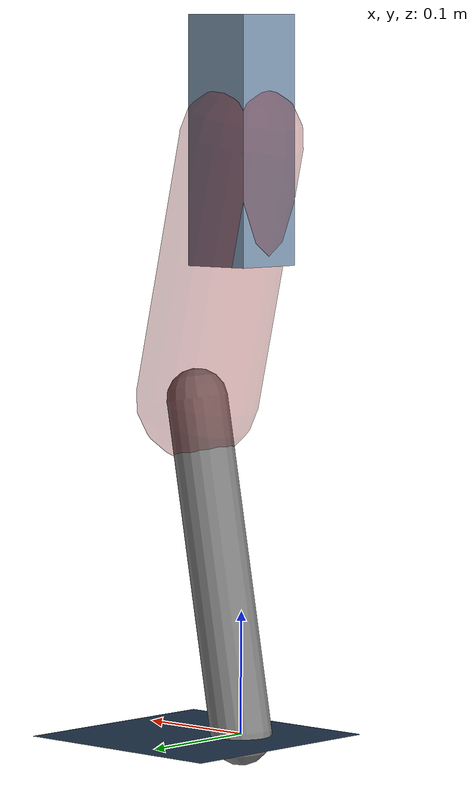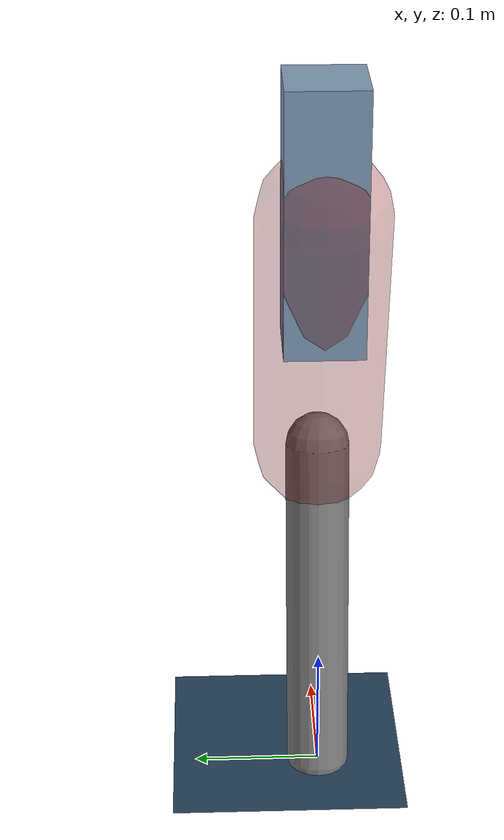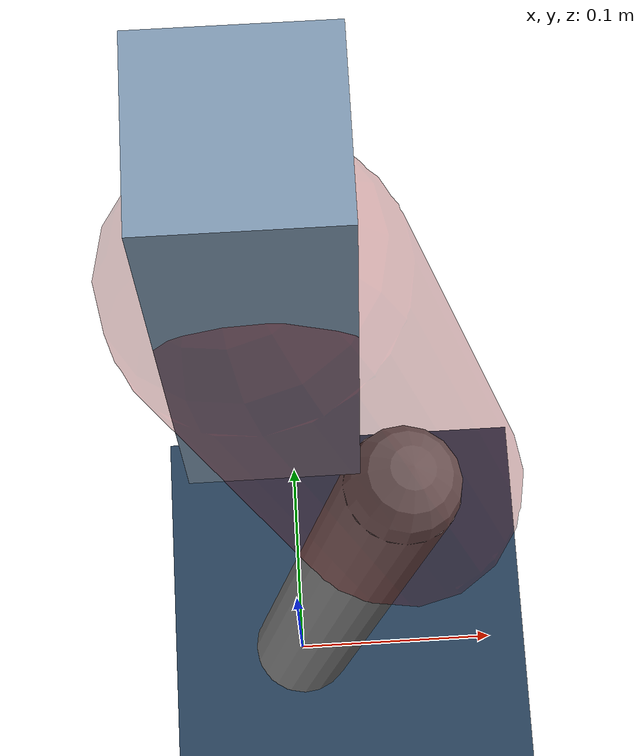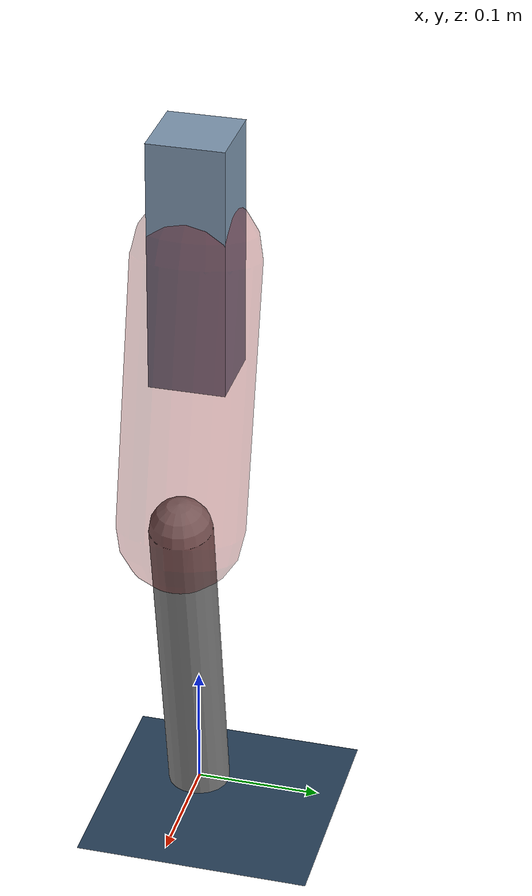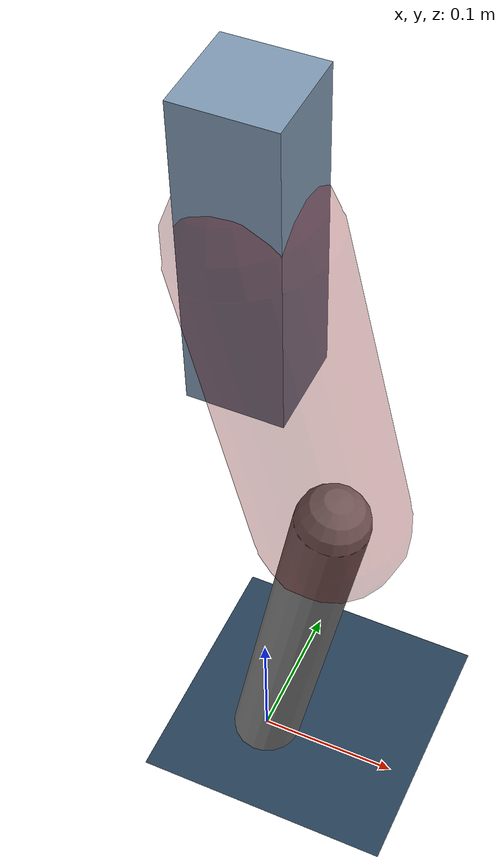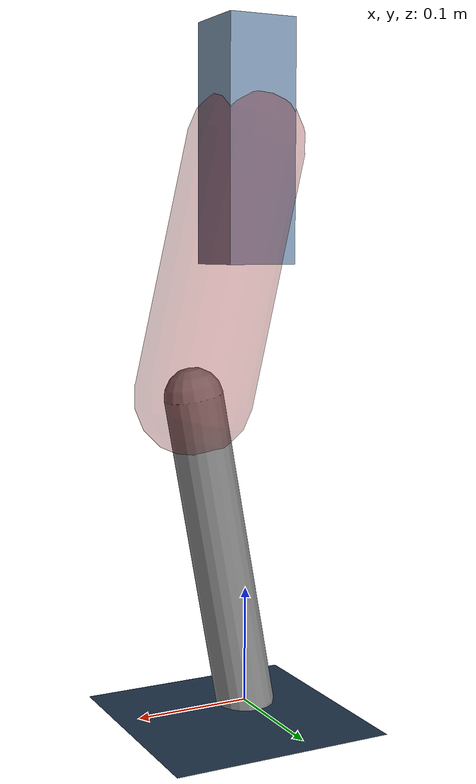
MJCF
<mujoco model="Hopper2D">
	<compiler inertiafromgeom="true" angle="radian" />
	<option timestep="0.001" integrator="implicit" cone="elliptic" solver="Newton" tolerance="1e-10" />

	<default>
		<geom contype="1" conaffinity="1" condim="3" friction="2 0.005 0.0001" solref="0.005 1" />
		<joint limited="true" damping="0.1" />
	</default>

	<asset>
		<texture name="skybox" type="skybox" builtin="gradient" rgb1=".4 .6 .8" rgb2="0 0 0" width="800" height="800" />
		<texture name="grid" type="2d" builtin="checker" rgb1=".1 .2 .3" rgb2=".2 .3 .4" width="300" height="300" mark="edge" markrgb=".2 .3 .4" />
		<material name="ground" texture="grid" texrepeat="1 1" texuniform="true" reflectance="0.1" />
		<material name="leg" rgba="0.5 0.6 0.7 1" />
	</asset>

	<worldbody>

		<geom name="floor" type="plane" size="5 5 0.25" material="ground" />

		<light directional="false" diffuse="0.8 0.8 0.8" specular="0.3 0.3 0.3" pos="0 0 2" dir="0 0 -1" />
		<light mode="targetbodycom" target="base" directional="false" diffuse="0.8 0.8 0.8" specular="0.3 0.3 0.3" pos="0 0 2" dir="0 0 -1" />

		<camera name="fixed" pos="0 -2 1" xyaxes="1 0 0 0 0 1" />
		<camera name="tracking" mode="trackcom" pos="0 -3 1" />

		<body name="root" pos="0 0 0.47872543167073267">
			<joint name="slide_x" type="slide" axis="1 0 0" range="-100 100" />
			<joint name="slide_z" type="slide" axis="0 0 1" range="0 10" />

			<body name="base" pos="0 0 0">
				<geom name="torso" type="box" size="0.03 0.03 0.1" mass="3.775" material="leg" />

				<body name="link1" pos="0 0 0" euler="0 1.3421678618042177 0">
					<joint type="hinge" axis="0 -1 0" pos="0 0 0" name="hinge1" limited="true" range="-3.14 3.14" stiffness="0" damping="0.1" />
					<geom name="thigh" type="capsule" fromto="0 0 0 0.2153976910048255 0 0" size="0.05" rgba="0.5 0 0 0.3" mass="0.7680942275120638" />

					<body name="link2" pos="0.2153976910048255 0 0" euler="0 0.4081985690455757 0">
						<joint type="hinge" axis="0 -1 0" pos="0 0 0" name="hinge2" limited="true" range="-3.14 3.14" stiffness="0" damping="0.1" />
						<geom name="shank" type="capsule" fromto="0 0 0 0.27332774066590715 0 0" size="0.025" mass="0.46166219253272567" />

					</body>
				</body>
			</body>
		</body>
	</worldbody>

	<actuator>
		<motor name="torque1" joint="hinge1" ctrlrange="-18.066872933873142 18.066872933873142" ctrllimited="true" gear="1" />
		<motor name="torque2" joint="hinge2" ctrlrange="-347.4465994577837 347.4465994577837" ctrllimited="true" gear="1" />
	</actuator>
</mujoco>
